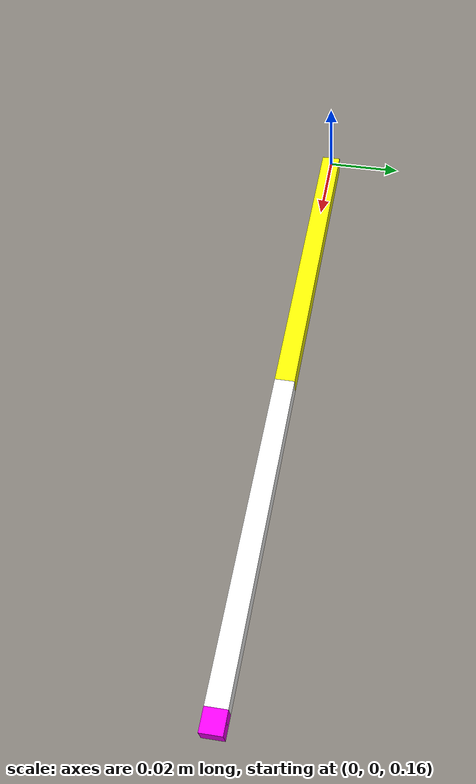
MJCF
<mujoco model="dobot_push">
    <compiler angle="radian" />
    <!--default-->
    <default>
        <!--need to define ctrllimited='false' in dobot.xml, because velocity config will override polisition config-->
        <velocity kv="1"/>
        <general gainprm="100" ctrlrange='-1 1' ctrllimited='true'/>
        <geom friction="1 0.1 0.1"/>
    </default>

    <asset>
        <texture builtin="checker" type="2d" height="100" width="100" mark="none" markrgb="1 1 1" name="square_box" rgb1="0. 0. 0." rgb2="1. 1. 1."/>
        <material name="plane" texrepeat="5 5" texture="square_box"/>
    </asset>

    <!--environment-->
    <worldbody>
        <light diffuse=".5 .5 .5" pos="0 0 3" dir="0 0 -1"/>
        <!--two link-->
        <body name="link1" pos="0 0 0.16">
            <inertial pos="0 0 0" quat="0.707107 0.707107 0 0" mass=".1" diaginertia="1 1 0.5" />
            <joint name="joint1" pos="0 0 0" axis="0 0 1" limited="true" range="-3.14 3.14" />
            <geom size="0.04 0.0025 0.0025" pos="0.04 0 0" type="box" rgba="1 1 0 1" />
            <body name="link2" pos="0.08 0 0">
                <inertial pos="0 0 0" quat="0.707107 0.707107 0 0" mass=".1" diaginertia="1 1 0.5" />
                <joint name="joint2" pos="0 0 0" axis="0 0 1" limited="true" range="-3.14 3.14" />
                <geom size="0.04 0.0025 0.0025" pos="0.04 0 0" type="box" rgba="1 1 1 1" />
                <body name="endeffector" pos="0.08 0 0">
                    <geom size="0.0025 0.0025 0.0025" pos="0 0 0" type="box" rgba="1 0 1 1" />
                </body>
            </body>
        </body>
    </worldbody>
    <actuator>
        <velocity name="joint1_velocity" joint="joint1" ctrllimited="false"/>
		<velocity name="joint2_velocity" joint="joint2" ctrllimited="false"/>
        <general name="joint1_force" joint="joint1" />
        <general name="joint2_force" joint="joint2" />
	</actuator>
</mujoco>
